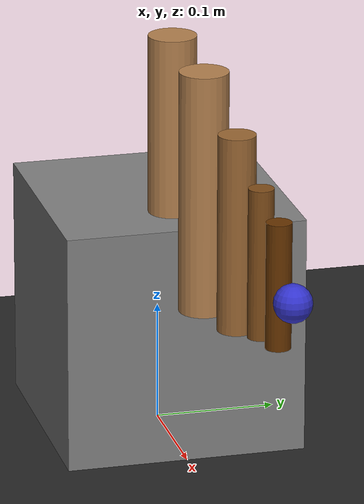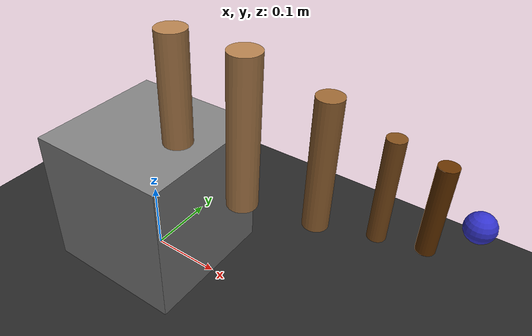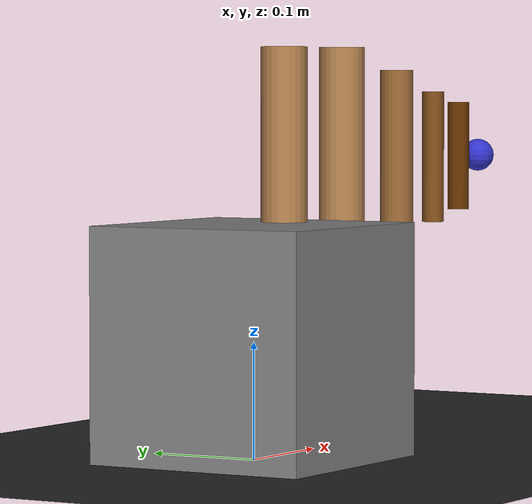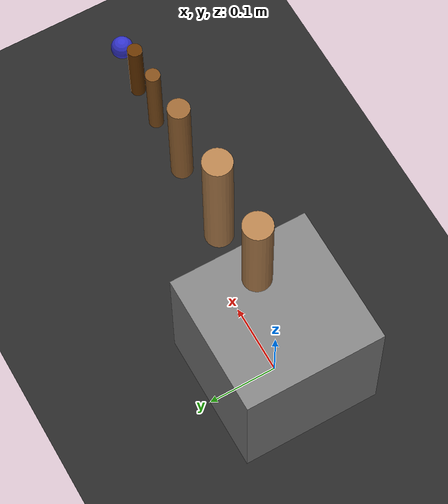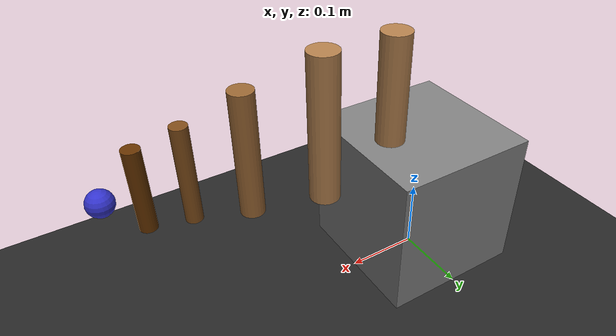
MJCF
<?xml version="1.0"?>
<mujoco model="cobot_c1">
  <compiler angle="radian" inertiafromgeom="true"/>
  <option timestep="0.002" gravity="0 0 -9.81"/>

  <asset>
    <texture name="grid" type="2d" builtin="checker" width="512" height="512" rgb1=".1 .1 .1" rgb2=".2 .2 .2"/>
    <material name="grid" texture="grid" texrepeat="1 1" texuniform="true"/>
  </asset>

  <worldbody>
    <geom name="ground" type="plane" pos="0 0 0" size="1 1 0.1" material="grid"/>

    <!-- Base (fixed) -->
    <body name="base_link" pos="0 0 0.1">
      <inertial pos="0 0 0" mass="1.0" diaginertia="0.01 0.01 0.01"/>
      <geom type="box" pos="0 0 0" size="0.1 0.1 0.1" rgba="0.5 0.5 0.5 1"/>

      <!-- Link 1 -->
      <body name="link1" pos="0 0 0.15">
        <joint name="joint1" type="hinge" axis="0 0 1" pos="0 0 0" range="-3.14159 3.14159"/>
        <inertial pos="0.05 0 0" mass="0.5" diaginertia="0.001 0.001 0.001"/>
        <geom type="cylinder" pos="0.05 0 0" size="0.02 0.1" rgba="0.7 0.5 0.3 1"/>

        <!-- Link 2 -->
        <body name="link2" pos="0.1 0 0">
          <joint name="joint2" type="hinge" axis="0 1 0" pos="0 0 0" range="-3.14159 3.14159"/>
          <inertial pos="0.05 0 0" mass="0.5" diaginertia="0.001 0.001 0.001"/>
          <geom type="cylinder" pos="0.05 0 0" size="0.02 0.1" rgba="0.7 0.5 0.3 1"/>

          <!-- Link 3 -->
          <body name="link3" pos="0.1 0 0">
            <joint name="joint3" type="hinge" axis="0 0 1" pos="0 0 0" range="-3.14159 3.14159"/>
            <inertial pos="0.05 0 0" mass="0.3" diaginertia="0.0005 0.0005 0.0005"/>
            <geom type="cylinder" pos="0.05 0 0" size="0.015 0.08" rgba="0.6 0.4 0.2 1"/>

            <!-- Link 4 -->
            <body name="link4" pos="0.08 0 0">
              <joint name="joint4" type="hinge" axis="0 1 0" pos="0 0 0" range="-3.14159 3.14159"/>
              <inertial pos="0.04 0 0" mass="0.25" diaginertia="0.0003 0.0003 0.0003"/>
              <geom type="cylinder" pos="0.04 0 0" size="0.01 0.06" rgba="0.5 0.3 0.1 1"/>

              <!-- Link 5 -->
              <body name="link5" pos="0.06 0 0">
                <joint name="joint5" type="hinge" axis="0 0 1" pos="0 0 0" range="-3.14159 3.14159"/>
                <inertial pos="0.03 0 0" mass="0.2" diaginertia="0.0002 0.0002 0.0002"/>
                <geom type="cylinder" pos="0.03 0 0" size="0.01 0.05" rgba="0.4 0.2 0 1"/>

                <!-- Link 6 (End-Effector) -->
                <body name="link6" pos="0.05 0 0">
                  <joint name="joint6" type="hinge" axis="0 1 0" pos="0 0 0" range="-3.14159 3.14159"/>
                  <inertial pos="0.02 0 0" mass="0.1" diaginertia="0.0001 0.0001 0.0001"/>
                  <geom type="sphere" pos="0.02 0 0" size="0.015" rgba="0.2 0.2 0.8 1"/>
                </body>
              </body>
            </body>
          </body>
        </body>
      </body>
    </body>
  </worldbody>
</mujoco>
